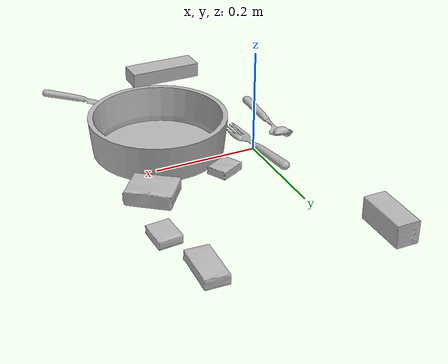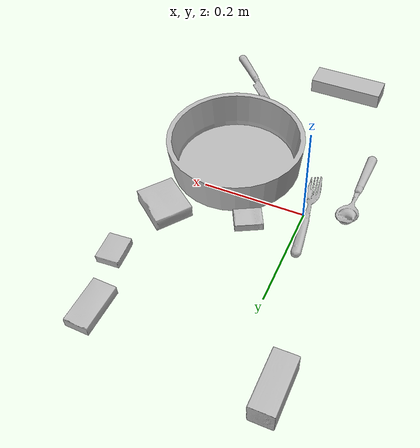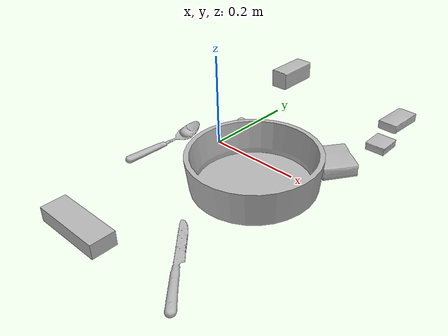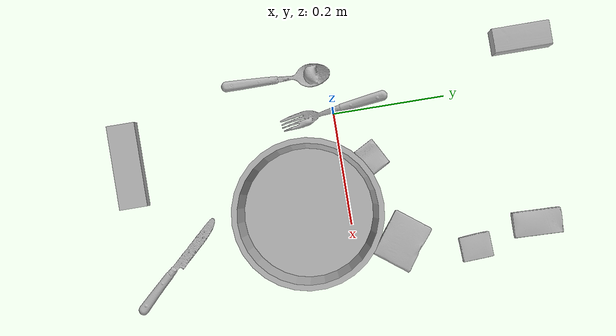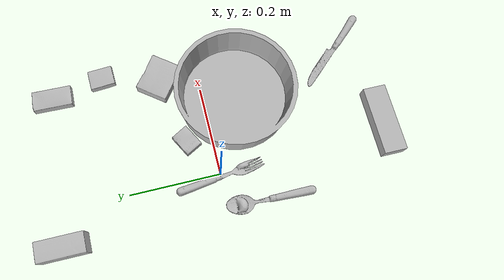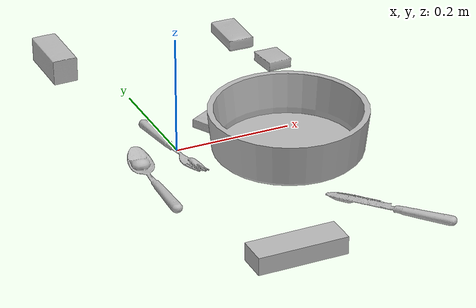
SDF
<sdf version="1.4">
  <world name="default">
    <light name="light1" type="point">
      <pose>0 0 1 0 0 0</pose>
      <diffuse>3 3 3 1</diffuse>
      <specular>3 3 3 1</specular>
    </light>
    <light name="light2" type="point">
      <pose>0 0.5 2 0 0 0</pose>
      <diffuse>1 1 1 1</diffuse>
      <specular>1 1 1 1</specular>
    </light>
    <light name="light3" type="point">
      <pose>0 0.5 2 0 0 0</pose>
      <diffuse>3 3 3 1</diffuse>
      <specular>3 3 3 1</specular>
    </light>
    <scene>
      <ambient>0.7 0.7 0.7</ambient>
    </scene>
    <model name="box11">
      <link name="link_box11">
        <collision name="default">
          <geometry>
            <mesh>
              <uri>model://sugar_box/collision_meshes/collision.obj</uri>
              <scale>0.5 0.5 0.5</scale>
            </mesh>
          </geometry>
          <surface>
            <friction>
              <ode>
                <mu>0.5</mu>
                <mu2>0.5</mu2>
              </ode>
            </friction>
          <contact>
        <ode>
            <max_vel>0</max_vel>
            <min_depth>0.0001</min_depth>
            <kp>1e8</kp>
        </ode>
    </contact></surface>
        </collision>
        <visual name="default">
          <geometry>
            <mesh>
              <uri>model://sugar_box/visual_meshes/visual.dae</uri>
              <scale>0.5 0.5 0.5</scale>
            </mesh>
          </geometry>
        </visual>
        <inertial>
          <mass>0.0727815181016922</mass>
          <pose>0.0005171863595023751 1.924554817378521e-05 -0.00018182402709499002 -0.0004046263004245651 0.001050663405794887 0.002615379021776999</pose>
          <inertia>
            <ixx>1.5160335e-05</ixx>
            <iyy>4.900132e-05</iyy>
            <izz>5.8660433e-05</izz>
            <ixy>0</ixy>
            <ixz>0</ixz>
            <iyz>0</iyz>
          </inertia>
        </inertial>
      </link>
      <pose>0.25017064809799194 0.3269319534301758 0.011399304494261742 0.0007751378017371369 -0.023432429977842582 -1.6101163833417205</pose>
    </model>
    <model name="box12">
      <link name="link_box12">
        <collision name="default">
          <geometry>
            <mesh>
              <uri>model://gelatin_box/collision_meshes/collision.obj</uri>
              <scale>1.0 1.0 1.0</scale>
            </mesh>
          </geometry>
          <surface>
            <friction>
              <ode>
                <mu>0.5</mu>
                <mu2>0.5</mu2>
              </ode>
            </friction>
          <contact>
        <ode>
            <max_vel>0</max_vel>
            <min_depth>0.0001</min_depth>
            <kp>1e8</kp>
        </ode>
    </contact></surface>
        </collision>
        <visual name="default">
          <geometry>
            <mesh>
              <uri>model://gelatin_box/visual_meshes/visual.dae</uri>
              <scale>1.0 1.0 1.0</scale>
            </mesh>
          </geometry>
        </visual>
        <inertial>
          <mass>0.2761145234107971</mass>
          <pose>0.000431961816502735 0.00011156871187267825 -0.0003640321083366871 -0.0010503719804291966 -0.004755819155973465 0.01644055947187314</pose>
          <inertia>
            <ixx>0.00019491432</ixx>
            <iyy>0.00013922628</iyy>
            <izz>0.00029670302</izz>
            <ixy>0</ixy>
            <ixz>0</ixz>
            <iyz>0</iyz>
          </inertia>
        </inertial>
      </link>
      <pose>0.2434067577123642 0.08415303379297256 0.015168316662311554 0.005597033694201709 -0.007304105851663991 0.9152092609678043</pose>
    </model>
    <model name="box13">
      <link name="link_box13">
        <collision name="default">
          <geometry>
            <mesh>
              <uri>model://jenga/collision_meshes/collision.obj</uri>
              <scale>1.0 1.0 1.0</scale>
            </mesh>
          </geometry>
          <surface>
            <friction>
              <ode>
                <mu>0.5</mu>
                <mu2>0.5</mu2>
              </ode>
            </friction>
          <contact>
        <ode>
            <max_vel>0</max_vel>
            <min_depth>0.0001</min_depth>
            <kp>1e8</kp>
        </ode>
    </contact></surface>
        </collision>
        <visual name="default">
          <geometry>
            <mesh>
              <uri>model://jenga/visual_meshes/visual.dae</uri>
              <scale>1.0 1.0 1.0</scale>
            </mesh>
          </geometry>
        </visual>
        <inertial>
          <mass>0.30891793966293335</mass>
          <pose>-2.502855807051674e-07 -0.0001025000965455547 -4.0923401684267446e-05 0.0 -7.34215461761844e-07 0.0</pose>
          <inertia>
            <ixx>8.548509e-05</ixx>
            <iyy>0.00057924463</iyy>
            <izz>0.0006183929</izz>
            <ixy>0</ixy>
            <ixz>0</ixz>
            <iyz>0</iyz>
          </inertia>
        </inertial>
      </link>
      <pose>0.03292696923017502 -0.375095933675766 0.014999997802078724 1.2313626075865709e-08 -1.972110689839434e-09 3.1400852361748246</pose>
    </model>
    <model name="box21">
      <link name="link_box21">
        <collision name="default">
          <geometry>
            <mesh>
              <uri>model://pudding_box/collision_meshes/collision.obj</uri>
              <scale>0.5 0.5 0.5</scale>
            </mesh>
          </geometry>
          <surface>
            <friction>
              <ode>
                <mu>0.5</mu>
                <mu2>0.5</mu2>
              </ode>
            </friction>
          <contact>
        <ode>
            <max_vel>0</max_vel>
            <min_depth>0.0001</min_depth>
            <kp>1e8</kp>
        </ode>
    </contact></surface>
        </collision>
        <visual name="default">
          <geometry>
            <mesh>
              <uri>model://pudding_box/visual_meshes/visual.dae</uri>
              <scale>0.5 0.5 0.5</scale>
            </mesh>
          </geometry>
        </visual>
        <inertial>
          <mass>0.049023520201444626</mass>
          <pose>0.0002447411243338138 0.00040339428232982755 -0.0002594413817860186 0.005213100395594636 -0.006603798704538055 0.020079825164231697</pose>
          <inertia>
            <ixx>1.3854642e-05</ixx>
            <iyy>9.321502e-06</iyy>
            <izz>2.046e-05</izz>
            <ixy>0</ixy>
            <ixz>0</ixz>
            <iyz>0</iyz>
          </inertia>
        </inertial>
      </link>
      <pose>0.2750207781791687 0.21249693632125854 0.009862901642918587 0.022348419460925046 -0.011391833384572012 -3.094997482113738</pose>
    </model>
    <model name="box22">
      <link name="link_box22">
        <collision name="default">
          <geometry>
            <mesh>
              <uri>model://wood_block/collision_meshes/collision.obj</uri>
              <scale>0.5 0.5 0.5</scale>
            </mesh>
          </geometry>
          <surface>
            <friction>
              <ode>
                <mu>0.5</mu>
                <mu2>0.5</mu2>
              </ode>
            </friction>
          <contact>
        <ode>
            <max_vel>0</max_vel>
            <min_depth>0.0001</min_depth>
            <kp>1e8</kp>
        </ode>
    </contact></surface>
        </collision>
        <visual name="default">
          <geometry>
            <mesh>
              <uri>model://wood_block/visual_meshes/visual.dae</uri>
              <scale>0.5 0.5 0.5</scale>
            </mesh>
          </geometry>
        </visual>
        <inertial>
          <mass>0.3074011206626892</mass>
          <pose>-2.9066577553749084e-06 -0.000285404734313488 0.00013204291462898254 -0.05220975528717129 -0.005192695583989696 -0.0068613793241849635</pose>
          <inertia>
            <ixx>0.00010283729</ixx>
            <iyy>0.00032486304</iyy>
            <izz>0.0003236479</izz>
            <ixy>0</ixy>
            <ixz>0</ixz>
            <iyz>0</iyz>
          </inertia>
        </inertial>
      </link>
      <pose>-0.07777837663888931 0.3483639657497406 0.022629264742136 -0.005208456674234984 0.005718752916857465 1.574227747394338</pose>
    </model>
    <model name="box23">
      <link name="link_box23">
        <collision name="default">
          <geometry>
            <mesh>
              <uri>model://cracker_box/collision_meshes/collision.obj</uri>
              <scale>0.25 0.25 0.25</scale>
            </mesh>
          </geometry>
          <surface>
            <friction>
              <ode>
                <mu>0.5</mu>
                <mu2>0.5</mu2>
              </ode>
            </friction>
          <contact>
        <ode>
            <max_vel>0</max_vel>
            <min_depth>0.0001</min_depth>
            <kp>1e8</kp>
        </ode>
    </contact></surface>
        </collision>
        <visual name="default">
          <geometry>
            <mesh>
              <uri>model://cracker_box/visual_meshes/visual.dae</uri>
              <scale>0.25 0.25 0.25</scale>
            </mesh>
          </geometry>
        </visual>
        <inertial>
          <mass>0.04833315312862396</mass>
          <pose>0.00023660357692278922 6.358561950037256e-05 -0.00042573834070935845 -0.0003162077466025917 -0.011106490531569568 0.002546795235651085</pose>
          <inertia>
            <ixx>7.683624e-06</ixx>
            <iyy>1.268717e-05</iyy>
            <izz>1.8105757e-05</izz>
            <ixy>0</ixy>
            <ixz>0</ixz>
            <iyz>0</iyz>
          </inertia>
        </inertial>
      </link>
      <pose>0.0880267471075058 0.055341336876153946 0.009120447561144829 -0.011788052319345854 -0.007367130885445534 0.4969483677069464</pose>
    </model>
    <model name="plate1">
      <link name="link_plate1">
        <collision name="default">
          <geometry>
            <mesh>
              <uri>model://pan_tefal/collision_meshes/collision.obj</uri>
              <scale>1.0 1.0 1.0</scale>
            </mesh>
          </geometry>
          <surface>
            <friction>
              <ode>
                <mu>0.5</mu>
                <mu2>0.5</mu2>
              </ode>
            </friction>
          <contact>
        <ode>
            <max_vel>0</max_vel>
            <min_depth>0.0001</min_depth>
            <kp>1e8</kp>
        </ode>
    </contact></surface>
        </collision>
        <visual name="default">
          <geometry>
            <mesh>
              <uri>model://pan_tefal/visual_meshes/visual.dae</uri>
              <scale>1.0 1.0 1.0</scale>
            </mesh>
          </geometry>
        </visual>
        <inertial>
          <mass>1.5598481893539429</mass>
          <pose>-0.0001800245518097654 3.279111842857674e-05 -0.008514934219419956 0.0008190275877392404 -0.0003301333888364595 -0.33185859522575717</pose>
          <inertia>
            <ixx>0.010767555</ixx>
            <iyy>0.010836974</iyy>
            <izz>0.019820997</izz>
            <ixy>0</ixy>
            <ixz>0</ixz>
            <iyz>0</iyz>
          </inertia>
        </inertial>
      </link>
      <pose>0.1667548418045044 -0.07173443585634232 0.038050007075071335 2.3475087544598313e-08 -1.5450687484154725e-08 -0.3359171351651706</pose>
    </model>
    <model name="silverware1">
      <link name="link_silverware1">
        <collision name="default">
          <geometry>
            <mesh>
              <uri>model://fork/collision_meshes/collision.obj</uri>
              <scale>1.0 1.0 1.0</scale>
            </mesh>
          </geometry>
          <surface>
            <friction>
              <ode>
                <mu>0.5</mu>
                <mu2>0.5</mu2>
              </ode>
            </friction>
          <contact>
        <ode>
            <max_vel>0</max_vel>
            <min_depth>0.0001</min_depth>
            <kp>1e8</kp>
        </ode>
    </contact></surface>
        </collision>
        <visual name="default">
          <geometry>
            <mesh>
              <uri>model://fork/visual_meshes/visual.dae</uri>
              <scale>1.0 1.0 1.0</scale>
            </mesh>
          </geometry>
        </visual>
        <inertial>
          <mass>0.024598950520157814</mass>
          <pose>-0.029570043087005615 0.0004658824182115495 0.0003218861820641905 -0.013552328184634912 -0.010977839901754499 0.014453902526732686</pose>
          <inertia>
            <ixx>8.623325e-07</ixx>
            <iyy>6.422079e-05</iyy>
            <izz>6.460647e-05</izz>
            <ixy>0</ixy>
            <ixz>0</ixz>
            <iyz>0</iyz>
          </inertia>
        </inertial>
      </link>
      <pose>-0.007070773281157017 0.0028827860951423645 0.005746626760810614 -0.19108554261540653 0.024089120497528437 -1.445458753763099</pose>
    </model>
    <model name="silverware2">
      <link name="link_silverware2">
        <collision name="default">
          <geometry>
            <mesh>
              <uri>model://knife/collision_meshes/collision.obj</uri>
              <scale>1.0 1.0 1.0</scale>
            </mesh>
          </geometry>
          <surface>
            <friction>
              <ode>
                <mu>0.5</mu>
                <mu2>0.5</mu2>
              </ode>
            </friction>
          <contact>
        <ode>
            <max_vel>0</max_vel>
            <min_depth>0.0001</min_depth>
            <kp>1e8</kp>
        </ode>
    </contact></surface>
        </collision>
        <visual name="default">
          <geometry>
            <mesh>
              <uri>model://knife/visual_meshes/visual.dae</uri>
              <scale>1.0 1.0 1.0</scale>
            </mesh>
          </geometry>
        </visual>
        <inertial>
          <mass>0.03473280370235443</mass>
          <pose>-0.02378525584936142 0.0015275126788765192 5.062021955382079e-05 0.0730594717304457 0.017248417183571667 -0.007409821049452296</pose>
          <inertia>
            <ixx>9.858578e-07</ixx>
            <iyy>0.00013343782</iyy>
            <izz>0.00013375531</izz>
            <ixy>0</ixy>
            <ixz>0</ixz>
            <iyz>0</iyz>
          </inertia>
        </inertial>
      </link>
      <pose>0.22480742633342743 -0.3175922930240631 0.007946577854454517 -0.023843263261385902 -0.014543247517675861 2.312347501385574</pose>
    </model>
    <model name="silverware3">
      <link name="link_silverware3">
        <collision name="default">
          <geometry>
            <mesh>
              <uri>model://spoon/collision_meshes/collision.obj</uri>
              <scale>1.0 1.0 1.0</scale>
            </mesh>
          </geometry>
          <surface>
            <friction>
              <ode>
                <mu>0.5</mu>
                <mu2>0.5</mu2>
              </ode>
            </friction>
          <contact>
        <ode>
            <max_vel>0</max_vel>
            <min_depth>0.0001</min_depth>
            <kp>1e8</kp>
        </ode>
    </contact></surface>
        </collision>
        <visual name="default">
          <geometry>
            <mesh>
              <uri>model://spoon/visual_meshes/visual.dae</uri>
              <scale>1.0 1.0 1.0</scale>
            </mesh>
          </geometry>
        </visual>
        <inertial>
          <mass>0.02618301659822464</mass>
          <pose>-0.0055263168178498745 -0.00160341733135283 -0.0007271658978424966 0.035216710647368914 -0.039065848798616645 0.0061506127138874515</pose>
          <inertia>
            <ixx>1.4563418e-06</ixx>
            <iyy>9.96255e-05</iyy>
            <izz>0.000100343714</izz>
            <ixy>0</ixy>
            <ixz>0</ixz>
            <iyz>0</iyz>
          </inertia>
        </inertial>
      </link>
      <pose>-0.07813231647014618 -0.09056343138217926 0.008385265246033669 0.006731783061643926 0.026892990956506796 1.5419776850025455</pose>
    </model>
  <physics type="ode">
      <max_contacts>50</max_contacts>
      <ode>
        <solver>
          <type>quick</type>
          <iters>75</iters>
        </solver>
        <constraints>
          <contact_max_correcting_vel>0</contact_max_correcting_vel>
          <contact_surface_layer>0</contact_surface_layer>
        </constraints>
      </ode>
    </physics></world>
</sdf>
